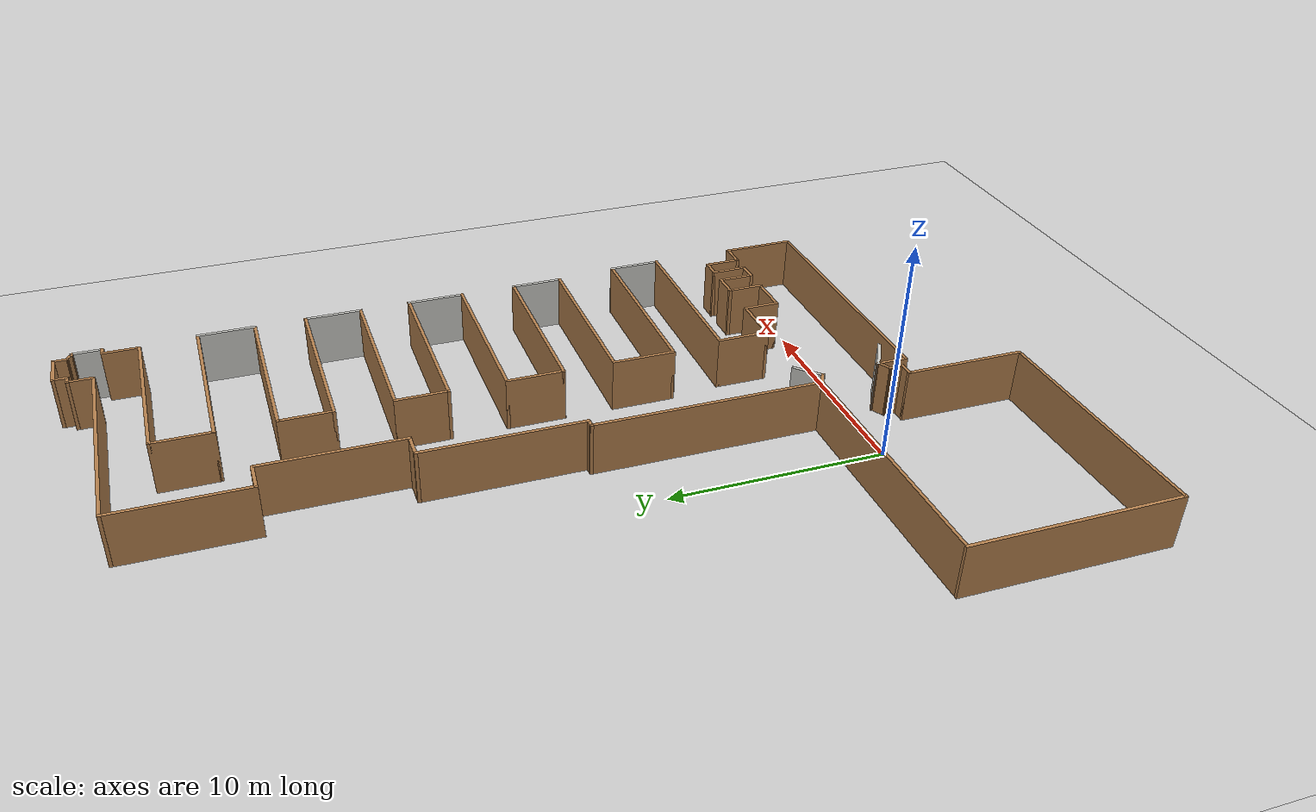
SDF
<sdf version="1.6">
 <world name="default">
  <light name="sun" type="directional">
   <pose>0 0 10 0 -0 0</pose>
   <diffuse>0.8 0.8 0.8 1</diffuse>
   <specular>0.2 0.2 0.2 1</specular>
   <attenuation>
    <range>1000</range>
    <constant>0.9</constant>
    <linear>0.01</linear>
    <quadratic>0.001</quadratic>
   </attenuation>
   <direction>-0.5 0.1 -0.9</direction>
  </light>
  <model name="ground_plane">
   <static>1</static>
   <link name="link">
    <collision name="collision">
     <geometry><plane><normal>0 0 1</normal><size>100 100</size></plane></geometry>
     <surface>
      <contact><collide_bitmask>65535</collide_bitmask></contact>
      <friction><ode><mu>100</mu><mu2>50</mu2></ode></friction>
     </surface>
    </collision>
    <visual name="visual">
     <cast_shadows>0</cast_shadows>
     <geometry><plane><normal>0 0 1</normal><size>100 100</size></plane></geometry>
     <material>
      <script><uri>file://media/materials/scripts/gazebo.material</uri><name>Gazebo/Grey</name></script>
     </material>
    </visual>
   </link>
  </model>
  <gravity>0 0 -9.8</gravity>
  <magnetic_field>6e-06 2.3e-05 -4.2e-05</magnetic_field>
  <atmosphere type="adiabatic"/>
  <physics name="default_physics" default="0" type="ode">
   <max_step_size>0.001</max_step_size>
   <real_time_factor>1</real_time_factor>
   <real_time_update_rate>1000</real_time_update_rate>
  </physics>
  <scene><ambient>0.4 0.4 0.4 1</ambient><background>0.7 0.7 0.7 1</background><shadows>1</shadows></scene>
  <audio><device>default</device></audio>
  <spherical_coordinates>
   <surface_model>EARTH_WGS84</surface_model>
   <latitude_deg>0</latitude_deg>
   <longitude_deg>0</longitude_deg>
   <elevation>0</elevation>
   <heading_deg>0</heading_deg>
  </spherical_coordinates>
  <model name="ecst_v2">
   <pose>3.24118 12.9777 0 0 0 -1.5708</pose>
   <link name="Wall_100">
    <collision name="Wall_100_Collision">
     <geometry><box><size>1 0.15 2.5</size></box></geometry>
     <pose>0 0 1.25 0 -0 0</pose>
    </collision>
    <visual name="Wall_100_Visual">
     <pose>0 0 1.25 0 -0 0</pose>
     <geometry><box><size>1 0.15 2.5</size></box></geometry>
     <material>
      <script><uri>file://media/materials/scripts/gazebo.material</uri><name>Gazebo/Wood</name></script>
      <ambient>1 1 1 1</ambient>
     </material>
     <meta><layer>0</layer></meta>
    </visual>
    <pose>10.625 10.6345 0 0 -0 1.5708</pose>
   </link>
   <link name="Wall_101">
    <collision name="Wall_101_Collision">
     <geometry><box><size>1.75 0.15 2.5</size></box></geometry>
     <pose>0 0 1.25 0 -0 0</pose>
    </collision>
    <visual name="Wall_101_Visual">
     <pose>0 0 1.25 0 -0 0</pose>
     <geometry><box><size>1.75 0.15 2.5</size></box></geometry>
     <material>
      <script><uri>file://media/materials/scripts/gazebo.material</uri><name>Gazebo/Wood</name></script>
      <ambient>1 1 1 1</ambient>
     </material>
     <meta><layer>0</layer></meta>
    </visual>
    <pose>11.425 11.0595 0 0 -0 0</pose>
   </link>
   <link name="Wall_102">
    <collision name="Wall_102_Collision">
     <geometry><box><size>1.25 0.15 2.5</size></box></geometry>
     <pose>0 0 1.25 0 -0 0</pose>
    </collision>
    <visual name="Wall_102_Visual">
     <pose>0 0 1.25 0 -0 0</pose>
     <geometry><box><size>1.25 0.15 2.5</size></box></geometry>
     <material>
      <script><uri>file://media/materials/scripts/gazebo.material</uri><name>Gazebo/Wood</name></script>
      <ambient>1 1 1 1</ambient>
     </material>
     <meta><layer>0</layer></meta>
    </visual>
    <pose>12.225 11.6095 0 0 -0 1.5708</pose>
   </link>
   <link name="Wall_103">
    <collision name="Wall_103_Collision">
     <geometry><box><size>3.5 0.15 2.5</size></box></geometry>
     <pose>0 0 1.25 0 -0 0</pose>
    </collision>
    <visual name="Wall_103_Visual">
     <pose>0 0 1.25 0 -0 0</pose>
     <geometry><box><size>3.5 0.15 2.5</size></box></geometry>
     <material>
      <script><uri>file://media/materials/scripts/gazebo.material</uri><name>Gazebo/Wood</name></script>
      <ambient>1 1 1 1</ambient>
     </material>
     <meta><layer>0</layer></meta>
    </visual>
    <pose>13.9 12.1595 0 0 -0 0</pose>
   </link>
   <link name="Wall_104">
    <collision name="Wall_104_Collision">
     <geometry><box><size>12.25 0.15 2.5</size></box></geometry>
     <pose>0 0 1.25 0 -0 0</pose>
    </collision>
    <visual name="Wall_104_Visual">
     <pose>0 0 1.25 0 -0 0</pose>
     <geometry><box><size>12.25 0.15 2.5</size></box></geometry>
     <material>
      <script><uri>file://media/materials/scripts/gazebo.material</uri><name>Gazebo/Wood</name></script>
      <ambient>1 1 1 1</ambient>
     </material>
     <meta><layer>0</layer></meta>
    </visual>
    <pose>15.575 6.10955 0 0 -0 -1.5708</pose>
   </link>
   <link name="Wall_105">
    <collision name="Wall_105_Collision">
     <geometry><box><size>1.5 0.15 2.5</size></box></geometry>
     <pose>0 0 1.25 0 -0 0</pose>
    </collision>
    <visual name="Wall_105_Visual">
     <pose>0 0 1.25 0 -0 0</pose>
     <geometry><box><size>1.5 0.15 2.5</size></box></geometry>
     <material>
      <script><uri>file://media/materials/scripts/gazebo.material</uri><name>Gazebo/Wood</name></script>
      <ambient>1 1 1 1</ambient>
     </material>
     <meta><layer>0</layer></meta>
    </visual>
    <pose>14.9 0.059548 0 0 -0 3.14159</pose>
   </link>
   <link name="Wall_106">
    <collision name="Wall_106_Collision">
     <geometry><box><size>1.75 0.15 2.5</size></box></geometry>
     <pose>0 0 1.25 0 -0 0</pose>
    </collision>
    <visual name="Wall_106_Visual">
     <pose>0 0 1.25 0 -0 0</pose>
     <geometry><box><size>1.75 0.15 2.5</size></box></geometry>
     <material>
      <script><uri>file://media/materials/scripts/gazebo.material</uri><name>Gazebo/CeilingTiled</name></script>
      <ambient>1 1 1 1</ambient>
     </material>
     <meta><layer>0</layer></meta>
    </visual>
    <pose>14.625 0.752368 0 0 -0 1.0472</pose>
   </link>
   <link name="Wall_108">
    <collision name="Wall_108_Collision">
     <geometry><box><size>0.75 0.15 2.5</size></box></geometry>
     <pose>0 0 1.25 0 -0 0</pose>
    </collision>
    <visual name="Wall_108_Visual">
     <pose>0 0 1.25 0 -0 0</pose>
     <geometry><box><size>0.75 0.15 2.5</size></box></geometry>
     <material>
      <script><uri>file://media/materials/scripts/gazebo.material</uri><name>Gazebo/Wood</name></script>
      <ambient>1 1 1 1</ambient>
     </material>
     <meta><layer>0</layer></meta>
    </visual>
    <pose>14.375 -0.200259 0 0 -0 -1.0472</pose>
   </link>
   <link name="Wall_109">
    <collision name="Wall_109_Collision">
     <geometry><box><size>0.75 0.15 2.5</size></box></geometry>
     <pose>0 0 1.25 0 -0 0</pose>
    </collision>
    <visual name="Wall_109_Visual">
     <pose>0 0 1.25 0 -0 0</pose>
     <geometry><box><size>0.75 0.15 2.5</size></box></geometry>
     <material>
      <script><uri>file://media/materials/scripts/gazebo.material</uri><name>Gazebo/Wood</name></script>
      <ambient>1 1 1 1</ambient>
     </material>
     <meta><layer>0</layer></meta>
    </visual>
    <pose>14.825 -0.460067 0 0 -0 0</pose>
   </link>
   <link name="Wall_110">
    <collision name="Wall_110_Collision">
     <geometry><box><size>0.75 0.15 2.5</size></box></geometry>
     <pose>0 0 1.25 0 -0 0</pose>
    </collision>
    <visual name="Wall_110_Visual">
     <pose>0 0 1.25 0 -0 0</pose>
     <geometry><box><size>0.75 0.15 2.5</size></box></geometry>
     <material>
      <script><uri>file://media/materials/scripts/gazebo.material</uri><name>Gazebo/Wood</name></script>
      <ambient>1 1 1 1</ambient>
     </material>
     <meta><layer>0</layer></meta>
    </visual>
    <pose>15.125 -0.760067 0 0 -0 -1.5708</pose>
   </link>
   <link name="Wall_111">
    <collision name="Wall_111_Collision">
     <geometry><box><size>5.75 0.15 2.5</size></box></geometry>
     <pose>0 0 1.25 0 -0 0</pose>
    </collision>
    <visual name="Wall_111_Visual">
     <pose>0 0 1.25 0 -0 0</pose>
     <geometry><box><size>5.75 0.15 2.5</size></box></geometry>
     <material>
      <script><uri>file://media/materials/scripts/gazebo.material</uri><name>Gazebo/Wood</name></script>
      <ambient>1 1 1 1</ambient>
     </material>
     <meta><layer>0</layer></meta>
    </visual>
    <pose>17.925 -1.06007 0 0 -0 0</pose>
   </link>
   <link name="Wall_112">
    <collision name="Wall_112_Collision">
     <geometry><box><size>11.25 0.15 2.5</size></box></geometry>
     <pose>0 0 1.25 0 -0 0</pose>
    </collision>
    <visual name="Wall_112_Visual">
     <pose>0 0 1.25 0 -0 0</pose>
     <geometry><box><size>11.25 0.15 2.5</size></box></geometry>
     <material>
      <script><uri>file://media/materials/scripts/gazebo.material</uri><name>Gazebo/Wood</name></script>
      <ambient>1 1 1 1</ambient>
     </material>
     <meta><layer>0</layer></meta>
    </visual>
    <pose>20.725 -6.61007 0 0 -0 -1.5708</pose>
   </link>
   <link name="Wall_113">
    <collision name="Wall_113_Collision">
     <geometry><box><size>9.75 0.15 2.5</size></box></geometry>
     <pose>0 0 1.25 0 -0 0</pose>
    </collision>
    <visual name="Wall_113_Visual">
     <pose>0 0 1.25 0 -0 0</pose>
     <geometry><box><size>9.75 0.15 2.5</size></box></geometry>
     <material>
      <script><uri>file://media/materials/scripts/gazebo.material</uri><name>Gazebo/Wood</name></script>
      <ambient>1 1 1 1</ambient>
     </material>
     <meta><layer>0</layer></meta>
    </visual>
    <pose>15.925 -12.1601 0 0 -0 3.14159</pose>
   </link>
   <link name="Wall_114">
    <collision name="Wall_114_Collision">
     <geometry><box><size>11.75 0.15 2.5</size></box></geometry>
     <pose>0 0 1.25 0 -0 0</pose>
    </collision>
    <visual name="Wall_114_Visual">
     <pose>0 0 1.25 0 -0 0</pose>
     <geometry><box><size>11.75 0.15 2.5</size></box></geometry>
     <material>
      <script><uri>file://media/materials/scripts/gazebo.material</uri><name>Gazebo/Wood</name></script>
      <ambient>1 1 1 1</ambient>
     </material>
     <meta><layer>0</layer></meta>
    </visual>
    <pose>11.125 -6.36007 0 0 -0 1.5708</pose>
   </link>
   <link name="Wall_115">
    <collision name="Wall_115_Collision">
     <geometry><box><size>10.75 0.15 2.5</size></box></geometry>
     <pose>0 0 1.25 0 -0 0</pose>
    </collision>
    <visual name="Wall_115_Visual">
     <pose>0 0 1.25 0 -0 0</pose>
     <geometry><box><size>10.75 0.15 2.5</size></box></geometry>
     <material>
      <script><uri>file://media/materials/scripts/gazebo.material</uri><name>Gazebo/Wood</name></script>
      <ambient>1 1 1 1</ambient>
     </material>
     <meta><layer>0</layer></meta>
    </visual>
    <pose>5.825 -0.560067 0 0 -0 3.14159</pose>
   </link>
   <link name="Wall_116">
    <collision name="Wall_116_Collision">
     <geometry><box><size>0.5 0.15 2.5</size></box></geometry>
     <pose>0 0 1.25 0 -0 0</pose>
    </collision>
    <visual name="Wall_116_Visual">
     <pose>0 0 1.25 0 -0 0</pose>
     <geometry><box><size>0.5 0.15 2.5</size></box></geometry>
     <material>
      <script><uri>file://media/materials/scripts/gazebo.material</uri><name>Gazebo/Wood</name></script>
      <ambient>1 1 1 1</ambient>
     </material>
     <meta><layer>0</layer></meta>
    </visual>
    <pose>0.525 -0.385067 0 0 -0 1.5708</pose>
   </link>
   <link name="Wall_117">
    <collision name="Wall_117_Collision">
     <geometry><box><size>7.5 0.15 2.5</size></box></geometry>
     <pose>0 0 1.25 0 -0 0</pose>
    </collision>
    <visual name="Wall_117_Visual">
     <pose>0 0 1.25 0 -0 0</pose>
     <geometry><box><size>7.5 0.15 2.5</size></box></geometry>
     <material>
      <script><uri>file://media/materials/scripts/gazebo.material</uri><name>Gazebo/Wood</name></script>
      <ambient>1 1 1 1</ambient>
     </material>
     <meta><layer>0</layer></meta>
    </visual>
    <pose>-3.15 -0.210067 0 0 -0 3.14159</pose>
   </link>
   <link name="Wall_118">
    <collision name="Wall_118_Collision">
     <geometry><box><size>1.25 0.15 2.5</size></box></geometry>
     <pose>0 0 1.25 0 -0 0</pose>
    </collision>
    <visual name="Wall_118_Visual">
     <pose>0 0 1.25 0 -0 0</pose>
     <geometry><box><size>1.25 0.15 2.5</size></box></geometry>
     <material>
      <script><uri>file://media/materials/scripts/gazebo.material</uri><name>Gazebo/Wood</name></script>
      <ambient>1 1 1 1</ambient>
     </material>
     <meta><layer>0</layer></meta>
    </visual>
    <pose>-6.825 0.339933 0 0 -0 1.5708</pose>
   </link>
   <link name="Wall_119">
    <collision name="Wall_119_Collision">
     <geometry><box><size>6.5 0.15 2.5</size></box></geometry>
     <pose>0 0 1.25 0 -0 0</pose>
    </collision>
    <visual name="Wall_119_Visual">
     <pose>0 0 1.25 0 -0 0</pose>
     <geometry><box><size>6.5 0.15 2.5</size></box></geometry>
     <material>
      <script><uri>file://media/materials/scripts/gazebo.material</uri><name>Gazebo/Wood</name></script>
      <ambient>1 1 1 1</ambient>
     </material>
     <meta><layer>0</layer></meta>
    </visual>
    <pose>-10 0.889933 0 0 -0 3.14159</pose>
   </link>
   <link name="Wall_120">
    <collision name="Wall_120_Collision">
     <geometry><box><size>1.5 0.15 2.5</size></box></geometry>
     <pose>0 0 1.25 0 -0 0</pose>
    </collision>
    <visual name="Wall_120_Visual">
     <pose>0 0 1.25 0 -0 0</pose>
     <geometry><box><size>1.5 0.15 2.5</size></box></geometry>
     <material>
      <script><uri>file://media/materials/scripts/gazebo.material</uri><name>Gazebo/Wood</name></script>
      <ambient>1 1 1 1</ambient>
     </material>
     <meta><layer>0</layer></meta>
    </visual>
    <pose>-13.175 0.214933 0 0 -0 -1.5708</pose>
   </link>
   <link name="Wall_121">
    <collision name="Wall_121_Collision">
     <geometry><box><size>6 0.15 2.5</size></box></geometry>
     <pose>0 0 1.25 0 -0 0</pose>
    </collision>
    <visual name="Wall_121_Visual">
     <pose>0 0 1.25 0 -0 0</pose>
     <geometry><box><size>6 0.15 2.5</size></box></geometry>
     <material>
      <script><uri>file://media/materials/scripts/gazebo.material</uri><name>Gazebo/Wood</name></script>
      <ambient>1 1 1 1</ambient>
     </material>
     <meta><layer>0</layer></meta>
    </visual>
    <pose>-16.1 -0.460067 0 0 -0 3.14159</pose>
   </link>
   <link name="Wall_122">
    <collision name="Wall_122_Collision">
     <geometry><box><size>10.25 0.15 2.5</size></box></geometry>
     <pose>0 0 1.25 0 -0 0</pose>
    </collision>
    <visual name="Wall_122_Visual">
     <pose>0 0 1.25 0 -0 0</pose>
     <geometry><box><size>10.25 0.15 2.5</size></box></geometry>
     <material>
      <script><uri>file://media/materials/scripts/gazebo.material</uri><name>Gazebo/Wood</name></script>
      <ambient>1 1 1 1</ambient>
     </material>
     <meta><layer>0</layer></meta>
    </visual>
    <pose>-19.025 4.58993 0 0 -0 1.5708</pose>
   </link>
   <link name="Wall_123">
    <collision name="Wall_123_Collision">
     <geometry><box><size>1.25 0.15 2.5</size></box></geometry>
     <pose>0 0 1.25 0 -0 0</pose>
    </collision>
    <visual name="Wall_123_Visual">
     <pose>0 0 1.25 0 -0 0</pose>
     <geometry><box><size>1.25 0.15 2.5</size></box></geometry>
     <material>
      <script><uri>file://media/materials/scripts/gazebo.material</uri><name>Gazebo/Wood</name></script>
      <ambient>1 1 1 1</ambient>
     </material>
     <meta><layer>0</layer></meta>
    </visual>
    <pose>-19.575 9.63993 0 0 -0 3.14159</pose>
   </link>
   <link name="Wall_124">
    <collision name="Wall_124_Collision">
     <geometry><box><size>0.5 0.15 2.5</size></box></geometry>
     <pose>0 0 1.25 0 -0 0</pose>
    </collision>
    <visual name="Wall_124_Visual">
     <pose>0 0 1.25 0 -0 0</pose>
     <geometry><box><size>0.5 0.15 2.5</size></box></geometry>
     <material>
      <script><uri>file://media/materials/scripts/gazebo.material</uri><name>Gazebo/Wood</name></script>
      <ambient>1 1 1 1</ambient>
     </material>
     <meta><layer>0</layer></meta>
    </visual>
    <pose>-20.125 9.81493 0 0 -0 1.5708</pose>
   </link>
   <link name="Wall_125">
    <collision name="Wall_125_Collision">
     <geometry><box><size>0.75 0.15 2.5</size></box></geometry>
     <pose>0 0 1.25 0 -0 0</pose>
    </collision>
    <visual name="Wall_125_Visual">
     <pose>0 0 1.25 0 -0 0</pose>
     <geometry><box><size>0.75 0.15 2.5</size></box></geometry>
     <material>
      <script><uri>file://media/materials/scripts/gazebo.material</uri><name>Gazebo/Wood</name></script>
      <ambient>1 1 1 1</ambient>
     </material>
     <meta><layer>0</layer></meta>
    </visual>
    <pose>-20.425 9.98993 0 0 -0 3.14159</pose>
   </link>
   <link name="Wall_126">
    <collision name="Wall_126_Collision">
     <geometry><box><size>1.75 0.15 2.5</size></box></geometry>
     <pose>0 0 1.25 0 -0 0</pose>
    </collision>
    <visual name="Wall_126_Visual">
     <pose>0 0 1.25 0 -0 0</pose>
     <geometry><box><size>1.75 0.15 2.5</size></box></geometry>
     <material>
      <script><uri>file://media/materials/scripts/gazebo.material</uri><name>Gazebo/Wood</name></script>
      <ambient>1 1 1 1</ambient>
     </material>
     <meta><layer>0</layer></meta>
    </visual>
    <pose>-20.725 10.7899 0 0 -0 1.5708</pose>
   </link>
   <link name="Wall_127">
    <collision name="Wall_127_Collision">
     <geometry><box><size>0.75 0.15 2.5</size></box></geometry>
     <pose>0 0 1.25 0 -0 0</pose>
    </collision>
    <visual name="Wall_127_Visual">
     <pose>0 0 1.25 0 -0 0</pose>
     <geometry><box><size>0.75 0.15 2.5</size></box></geometry>
     <material>
      <script><uri>file://media/materials/scripts/gazebo.material</uri><name>Gazebo/Wood</name></script>
      <ambient>1 1 1 1</ambient>
     </material>
     <meta><layer>0</layer></meta>
    </visual>
    <pose>-20.425 11.5899 0 0 -0 0</pose>
   </link>
   <link name="Wall_128">
    <collision name="Wall_128_Collision">
     <geometry><box><size>0.5 0.15 2.5</size></box></geometry>
     <pose>0 0 1.25 0 -0 0</pose>
    </collision>
    <visual name="Wall_128_Visual">
     <pose>0 0 1.25 0 -0 0</pose>
     <geometry><box><size>0.5 0.15 2.5</size></box></geometry>
     <material>
      <script><uri>file://media/materials/scripts/gazebo.material</uri><name>Gazebo/Wood</name></script>
      <ambient>1 1 1 1</ambient>
     </material>
     <meta><layer>0</layer></meta>
    </visual>
    <pose>-20.0375 11.7415 0 0 -0 1.0472</pose>
   </link>
   <link name="Wall_129">
    <collision name="Wall_129_Collision">
     <geometry><box><size>0.25 0.15 2.5</size></box></geometry>
     <pose>0 0 1.25 0 -0 0</pose>
    </collision>
    <visual name="Wall_129_Visual">
     <pose>0 0 1.25 0 -0 0</pose>
     <geometry><box><size>0.25 0.15 2.5</size></box></geometry>
     <material>
      <script><uri>file://media/materials/scripts/gazebo.material</uri><name>Gazebo/Wood</name></script>
      <ambient>1 1 1 1</ambient>
     </material>
     <meta><layer>0</layer></meta>
    </visual>
    <pose>-19.95 11.943 0 0 -0 1.5708</pose>
   </link>
   <link name="Wall_130">
    <collision name="Wall_130_Collision">
     <geometry><box><size>1.5 0.15 2.5</size></box></geometry>
     <pose>0 0 1.25 0 -0 0</pose>
    </collision>
    <visual name="Wall_130_Visual">
     <pose>0 0 1.25 0 -0 0</pose>
     <geometry><box><size>1.5 0.15 2.5</size></box></geometry>
     <material>
      <script><uri>file://media/materials/scripts/gazebo.material</uri><name>Gazebo/CeilingTiled</name></script>
      <ambient>1 1 1 1</ambient>
     </material>
     <meta><layer>0</layer></meta>
    </visual>
    <pose>-19.275 11.993 0 0 -0 0</pose>
   </link>
   <link name="Wall_131">
    <collision name="Wall_131_Collision">
     <geometry><box><size>0.5 0.15 2.5</size></box></geometry>
     <pose>0 0 1.25 0 -0 0</pose>
    </collision>
    <visual name="Wall_131_Visual">
     <pose>0 0 1.25 0 -0 0</pose>
     <geometry><box><size>0.5 0.15 2.5</size></box></geometry>
     <material>
      <script><uri>file://media/materials/scripts/gazebo.material</uri><name>Gazebo/Wood</name></script>
      <ambient>1 1 1 1</ambient>
     </material>
     <meta><layer>0</layer></meta>
    </visual>
    <pose>-18.6 11.818 0 0 -0 -1.5708</pose>
   </link>
   <link name="Wall_132">
    <collision name="Wall_132_Collision">
     <geometry><box><size>1.75 0.15 2.5</size></box></geometry>
     <pose>0 0 1.25 0 -0 0</pose>
    </collision>
    <visual name="Wall_132_Visual">
     <pose>0 0 1.25 0 -0 0</pose>
     <geometry><box><size>1.75 0.15 2.5</size></box></geometry>
     <material>
      <script><uri>file://media/materials/scripts/gazebo.material</uri><name>Gazebo/Wood</name></script>
      <ambient>1 1 1 1</ambient>
     </material>
     <meta><layer>0</layer></meta>
    </visual>
    <pose>-17.8 11.643 0 0 -0 0</pose>
   </link>
   <link name="Wall_133">
    <collision name="Wall_133_Collision">
     <geometry><box><size>8 0.15 2.5</size></box></geometry>
     <pose>0 0 1.25 0 -0 0</pose>
    </collision>
    <visual name="Wall_133_Visual">
     <pose>0 0 1.25 0 -0 0</pose>
     <geometry><box><size>8 0.15 2.5</size></box></geometry>
     <material>
      <script><uri>file://media/materials/scripts/gazebo.material</uri><name>Gazebo/Wood</name></script>
      <ambient>1 1 1 1</ambient>
     </material>
     <meta><layer>0</layer></meta>
    </visual>
    <pose>-17 7.71804 0 0 -0 -1.5708</pose>
   </link>
   <link name="Wall_134">
    <collision name="Wall_134_Collision">
     <geometry><box><size>2.75 0.15 2.5</size></box></geometry>
     <pose>0 0 1.25 0 -0 0</pose>
    </collision>
    <visual name="Wall_134_Visual">
     <pose>0 0 1.25 0 -0 0</pose>
     <geometry><box><size>2.75 0.15 2.5</size></box></geometry>
     <material>
      <script><uri>file://media/materials/scripts/gazebo.material</uri><name>Gazebo/Wood</name></script>
      <ambient>1 1 1 1</ambient>
     </material>
     <meta><layer>0</layer></meta>
    </visual>
    <pose>-15.7 3.79304 0 0 -0 0</pose>
   </link>
   <link name="Wall_135">
    <collision name="Wall_135_Collision">
     <geometry><box><size>8.25 0.15 2.5</size></box></geometry>
     <pose>0 0 1.25 0 -0 0</pose>
    </collision>
    <visual name="Wall_135_Visual">
     <pose>0 0 1.25 0 -0 0</pose>
     <geometry><box><size>8.25 0.15 2.5</size></box></geometry>
     <material>
      <script><uri>file://media/materials/scripts/gazebo.material</uri><name>Gazebo/Wood</name></script>
      <ambient>1 1 1 1</ambient>
     </material>
     <meta><layer>0</layer></meta>
    </visual>
    <pose>-14.4 7.84304 0 0 -0 1.5708</pose>
   </link>
   <link name="Wall_136">
    <collision name="Wall_136_Collision">
     <geometry><box><size>2.75 0.15 2.5</size></box></geometry>
     <pose>0 0 1.25 0 -0 0</pose>
    </collision>
    <visual name="Wall_136_Visual">
     <pose>0 0 1.25 0 -0 0</pose>
     <geometry><box><size>2.75 0.15 2.5</size></box></geometry>
     <material>
      <script><uri>file://media/materials/scripts/gazebo.material</uri><name>Gazebo/CeilingTiled</name></script>
      <ambient>1 1 1 1</ambient>
     </material>
     <meta><layer>0</layer></meta>
    </visual>
    <pose>-13.1 11.893 0 0 -0 0</pose>
   </link>
   <link name="Wall_137">
    <collision name="Wall_137_Collision">
     <geometry><box><size>8.25 0.15 2.5</size></box></geometry>
     <pose>0 0 1.25 0 -0 0</pose>
    </collision>
    <visual name="Wall_137_Visual">
     <pose>0 0 1.25 0 -0 0</pose>
     <geometry><box><size>8.25 0.15 2.5</size></box></geometry>
     <material>
      <script><uri>file://media/materials/scripts/gazebo.material</uri><name>Gazebo/Wood</name></script>
      <ambient>1 1 1 1</ambient>
     </material>
     <meta><layer>0</layer></meta>
    </visual>
    <pose>-11.8 7.84304 0 0 -0 -1.5708</pose>
   </link>
   <link name="Wall_138">
    <collision name="Wall_138_Collision">
     <geometry><box><size>2.5 0.15 2.5</size></box></geometry>
     <pose>0 0 1.25 0 -0 0</pose>
    </collision>
    <visual name="Wall_138_Visual">
     <pose>0 0 1.25 0 -0 0</pose>
     <geometry><box><size>2.5 0.15 2.5</size></box></geometry>
     <material>
      <script><uri>file://media/materials/scripts/gazebo.material</uri><name>Gazebo/Wood</name></script>
      <ambient>1 1 1 1</ambient>
     </material>
     <meta><layer>0</layer></meta>
    </visual>
    <pose>-10.625 3.79304 0 0 -0 0</pose>
   </link>
   <link name="Wall_139">
    <collision name="Wall_139_Collision">
     <geometry><box><size>8.25 0.15 2.5</size></box></geometry>
     <pose>0 0 1.25 0 -0 0</pose>
    </collision>
    <visual name="Wall_139_Visual">
     <pose>0 0 1.25 0 -0 0</pose>
     <geometry><box><size>8.25 0.15 2.5</size></box></geometry>
     <material>
      <script><uri>file://media/materials/scripts/gazebo.material</uri><name>Gazebo/Wood</name></script>
      <ambient>1 1 1 1</ambient>
     </material>
     <meta><layer>0</layer></meta>
    </visual>
    <pose>-9.45 7.84304 0 0 -0 1.5708</pose>
   </link>
   <link name="Wall_140">
    <collision name="Wall_140_Collision">
     <geometry><box><size>2.75 0.15 2.5</size></box></geometry>
     <pose>0 0 1.25 0 -0 0</pose>
    </collision>
    <visual name="Wall_140_Visual">
     <pose>0 0 1.25 0 -0 0</pose>
     <geometry><box><size>2.75 0.15 2.5</size></box></geometry>
     <material>
      <script><uri>file://media/materials/scripts/gazebo.material</uri><name>Gazebo/CeilingTiled</name></script>
      <ambient>1 1 1 1</ambient>
     </material>
     <meta><layer>0</layer></meta>
    </visual>
    <pose>-8.15 11.893 0 0 -0 0</pose>
   </link>
   <link name="Wall_141">
    <collision name="Wall_141_Collision">
     <geometry><box><size>8.25 0.15 2.5</size></box></geometry>
     <pose>0 0 1.25 0 -0 0</pose>
    </collision>
    <visual name="Wall_141_Visual">
     <pose>0 0 1.25 0 -0 0</pose>
     <geometry><box><size>8.25 0.15 2.5</size></box></geometry>
     <material>
      <script><uri>file://media/materials/scripts/gazebo.material</uri><name>Gazebo/Wood</name></script>
      <ambient>1 1 1 1</ambient>
     </material>
     <meta><layer>0</layer></meta>
    </visual>
    <pose>-6.85 7.84304 0 0 -0 -1.5708</pose>
   </link>
   <link name="Wall_142">
    <collision name="Wall_142_Collision">
     <geometry><box><size>2.5 0.15 2.5</size></box></geometry>
     <pose>0 0 1.25 0 -0 0</pose>
    </collision>
    <visual name="Wall_142_Visual">
     <pose>0 0 1.25 0 -0 0</pose>
     <geometry><box><size>2.5 0.15 2.5</size></box></geometry>
     <material>
      <script><uri>file://media/materials/scripts/gazebo.material</uri><name>Gazebo/Wood</name></script>
      <ambient>1 1 1 1</ambient>
     </material>
     <meta><layer>0</layer></meta>
    </visual>
    <pose>-5.675 3.79304 0 0 -0 0</pose>
   </link>
   <link name="Wall_143">
    <collision name="Wall_143_Collision">
     <geometry><box><size>8.25 0.15 2.5</size></box></geometry>
     <pose>0 0 1.25 0 -0 0</pose>
    </collision>
    <visual name="Wall_143_Visual">
     <pose>0 0 1.25 0 -0 0</pose>
     <geometry><box><size>8.25 0.15 2.5</size></box></geometry>
     <material>
      <script><uri>file://media/materials/scripts/gazebo.material</uri><name>Gazebo/Wood</name></script>
      <ambient>1 1 1 1</ambient>
     </material>
     <meta><layer>0</layer></meta>
    </visual>
    <pose>-4.5 7.84304 0 0 -0 1.5708</pose>
   </link>
   <link name="Wall_144">
    <collision name="Wall_144_Collision">
     <geometry><box><size>2.75 0.15 2.5</size></box></geometry>
     <pose>0 0 1.25 0 -0 0</pose>
    </collision>
    <visual name="Wall_144_Visual">
     <pose>0 0 1.25 0 -0 0</pose>
     <geometry><box><size>2.75 0.15 2.5</size></box></geometry>
     <material>
      <script><uri>file://media/materials/scripts/gazebo.material</uri><name>Gazebo/CeilingTiled</name></script>
      <ambient>1 1 1 1</ambient>
     </material>
     <meta><layer>0</layer></meta>
    </visual>
    <pose>-3.2 11.893 0 0 -0 0</pose>
   </link>
   <link name="Wall_145">
    <collision name="Wall_145_Collision">
     <geometry><box><size>8.25 0.15 2.5</size></box></geometry>
     <pose>0 0 1.25 0 -0 0</pose>
    </collision>
    <visual name="Wall_145_Visual">
     <pose>0 0 1.25 0 -0 0</pose>
     <geometry><box><size>8.25 0.15 2.5</size></box></geometry>
     <material>
      <script><uri>file://media/materials/scripts/gazebo.material</uri><name>Gazebo/Wood</name></script>
      <ambient>1 1 1 1</ambient>
     </material>
     <meta><layer>0</layer></meta>
    </visual>
    <pose>-1.9 7.84304 0 0 -0 -1.5708</pose>
   </link>
   <link name="Wall_146">
    <collision name="Wall_146_Collision">
     <geometry><box><size>2.75 0.15 2.5</size></box></geometry>
     <pose>0 0 1.25 0 -0 0</pose>
    </collision>
    <visual name="Wall_146_Visual">
     <pose>0 0 1.25 0 -0 0</pose>
     <geometry><box><size>2.75 0.15 2.5</size></box></geometry>
     <material>
      <script><uri>file://media/materials/scripts/gazebo.material</uri><name>Gazebo/Wood</name></script>
      <ambient>1 1 1 1</ambient>
     </material>
     <meta><layer>0</layer></meta>
    </visual>
    <pose>-0.6 3.79304 0 0 -0 0</pose>
   </link>
   <link name="Wall_147">
    <collision name="Wall_147_Collision">
     <geometry><box><size>8.25 0.15 2.5</size></box></geometry>
     <pose>0 0 1.25 0 -0 0</pose>
    </collision>
    <visual name="Wall_147_Visual">
     <pose>0 0 1.25 0 -0 0</pose>
     <geometry><box><size>8.25 0.15 2.5</size></box></geometry>
     <material>
      <script><uri>file://media/materials/scripts/gazebo.material</uri><name>Gazebo/Wood</name></script>
      <ambient>1 1 1 1</ambient>
     </material>
     <meta><layer>0</layer></meta>
    </visual>
    <pose>0.7 7.84304 0 0 -0 1.5708</pose>
   </link>
   <link name="Wall_148">
    <collision name="Wall_148_Collision">
     <geometry><box><size>2.5 0.15 2.5</size></box></geometry>
     <pose>0 0 1.25 0 -0 0</pose>
    </collision>
    <visual name="Wall_148_Visual">
     <pose>0 0 1.25 0 -0 0</pose>
     <geometry><box><size>2.5 0.15 2.5</size></box></geometry>
     <material>
      <script><uri>file://media/materials/scripts/gazebo.material</uri><name>Gazebo/CeilingTiled</name></script>
      <ambient>1 1 1 1</ambient>
     </material>
     <meta><layer>0</layer></meta>
    </visual>
    <pose>1.875 11.893 0 0 -0 0</pose>
   </link>
   <link name="Wall_149">
    <collision name="Wall_149_Collision">
     <geometry><box><size>8.25 0.15 2.5</size></box></geometry>
     <pose>0 0 1.25 0 -0 0</pose>
    </collision>
    <visual name="Wall_149_Visual">
     <pose>0 0 1.25 0 -0 0</pose>
     <geometry><box><size>8.25 0.15 2.5</size></box></geometry>
     <material>
      <script><uri>file://media/materials/scripts/gazebo.material</uri><name>Gazebo/Wood</name></script>
      <ambient>1 1 1 1</ambient>
     </material>
     <meta><layer>0</layer></meta>
    </visual>
    <pose>3.05 7.84304 0 0 -0 -1.5708</pose>
   </link>
   <link name="Wall_150">
    <collision name="Wall_150_Collision">
     <geometry><box><size>3 0.15 2.5</size></box></geometry>
     <pose>0 0 1.25 0 -0 0</pose>
    </collision>
    <visual name="Wall_150_Visual">
     <pose>0 0 1.25 0 -0 0</pose>
     <geometry><box><size>3 0.15 2.5</size></box></geometry>
     <material>
      <script><uri>file://media/materials/scripts/gazebo.material</uri><name>Gazebo/Wood</name></script>
      <ambient>1 1 1 1</ambient>
     </material>
     <meta><layer>0</layer></meta>
    </visual>
    <pose>4.475 3.79304 0 0 -0 0</pose>
   </link>
   <link name="Wall_151">
    <collision name="Wall_151_Collision">
     <geometry><box><size>8.5 0.15 2.5</size></box></geometry>
     <pose>0 0 1.25 0 -0 0</pose>
    </collision>
    <visual name="Wall_151_Visual">
     <pose>0 0 1.25 0 -0 0</pose>
     <geometry><box><size>8.5 0.15 2.5</size></box></geometry>
     <material>
      <script><uri>file://media/materials/scripts/gazebo.material</uri><name>Gazebo/Wood</name></script>
      <ambient>1 1 1 1</ambient>
     </material>
     <meta><layer>0</layer></meta>
    </visual>
    <pose>5.9 7.96804 0 0 -0 1.5708</pose>
   </link>
   <link name="Wall_152">
    <collision name="Wall_152_Collision">
     <geometry><box><size>2.52506 0.15 2.5</size></box></geometry>
     <pose>0 0 1.25 0 -0 0</pose>
    </collision>
    <visual name="Wall_152_Visual">
     <pose>0 0 1.25 0 -0 0</pose>
     <geometry><box><size>2.52506 0.15 2.5</size></box></geometry>
     <material>
      <script><uri>file://media/materials/scripts/gazebo.material</uri><name>Gazebo/CeilingTiled</name></script>
      <ambient>1 1 1 1</ambient>
     </material>
     <meta><layer>0</layer></meta>
    </visual>
    <pose>7.0875 12.1513 0 0 -0 0.00695</pose>
   </link>
   <link name="Wall_153">
    <collision name="Wall_153_Collision">
     <geometry><box><size>8.25 0.15 2.5</size></box></geometry>
     <pose>0 0 1.25 0 -0 0</pose>
    </collision>
    <visual name="Wall_153_Visual">
     <pose>0 0 1.25 0 -0 0</pose>
     <geometry><box><size>8.25 0.15 2.5</size></box></geometry>
     <material>
      <script><uri>file://media/materials/scripts/gazebo.material</uri><name>Gazebo/Wood</name></script>
      <ambient>1 1 1 1</ambient>
     </material>
     <meta><layer>0</layer></meta>
    </visual>
    <pose>8.275 8.10955 0 0 -0 -1.5708</pose>
   </link>
   <link name="Wall_155">
    <collision name="Wall_155_Collision">
     <geometry><box><size>0.75 0.15 2.5</size></box></geometry>
     <pose>0 0 1.25 0 -0 0</pose>
    </collision>
    <visual name="Wall_155_Visual">
     <pose>0 0 1.25 0 -0 0</pose>
     <geometry><box><size>0.75 0.15 2.5</size></box></geometry>
     <material>
      <script><uri>file://media/materials/scripts/gazebo.material</uri><name>Gazebo/Wood</name></script>
      <ambient>1 1 1 1</ambient>
     </material>
     <meta><layer>0</layer></meta>
    </visual>
    <pose>11.275 -0.30026 0 0 -0 1.0472</pose>
   </link>
   <link name="Wall_156">
    <collision name="Wall_156_Collision">
     <geometry><box><size>1.5 0.15 2.5</size></box></geometry>
     <pose>0 0 1.25 0 -0 0</pose>
    </collision>
    <visual name="Wall_156_Visual">
     <pose>0 0 1.25 0 -0 0</pose>
     <geometry><box><size>1.5 0.15 2.5</size></box></geometry>
     <material>
      <script><uri>file://media/materials/scripts/gazebo.material</uri><name>Gazebo/CeilingTiled</name></script>
      <ambient>1 1 1 1</ambient>
     </material>
     <meta><layer>0</layer></meta>
    </visual>
    <pose>10.9477 0.436845 0 0 -0 2.35619</pose>
   </link>
   <link name="Wall_90">
    <collision name="Wall_90_Collision">
     <geometry><box><size>8.25 0.15 2.5</size></box></geometry>
     <pose>0 0 1.25 0 -0 0</pose>
    </collision>
    <visual name="Wall_90_Visual">
     <pose>0 0 1.25 0 -0 0</pose>
     <geometry><box><size>8.25 0.15 2.5</size></box></geometry>
     <material>
      <script><uri>file://media/materials/scripts/gazebo.material</uri><name>Gazebo/Grey</name></script>
      <ambient>1 1 1 1</ambient>
     </material>
     <meta><layer>0</layer></meta>
    </visual>
    <pose>8.275 8.10955 0 0 -0 -1.5708</pose>
   </link>
   <link name="Wall_91">
    <collision name="Wall_91_Collision">
     <geometry><box><size>2.5 0.15 2.5</size></box></geometry>
     <pose>0 0 1.25 0 -0 0</pose>
    </collision>
    <visual name="Wall_91_Visual">
     <pose>0 0 1.25 0 -0 0</pose>
     <geometry><box><size>2.5 0.15 2.5</size></box></geometry>
     <material>
      <script><uri>file://media/materials/scripts/gazebo.material</uri><name>Gazebo/Wood</name></script>
      <ambient>1 1 1 1</ambient>
     </material>
     <meta><layer>0</layer></meta>
    </visual>
    <pose>9.45 4.05955 0 0 -0 0</pose>
   </link>
   <link name="Wall_92">
    <collision name="Wall_92_Collision">
     <geometry><box><size>2.5 0.15 2.5</size></box></geometry>
     <pose>0 0 1.25 0 -0 0</pose>
    </collision>
    <visual name="Wall_92_Visual">
     <pose>0 0 1.25 0 -0 0</pose>
     <geometry><box><size>2.5 0.15 2.5</size></box></geometry>
     <material>
      <script><uri>file://media/materials/scripts/gazebo.material</uri><name>Gazebo/Wood</name></script>
      <ambient>1 1 1 1</ambient>
     </material>
     <meta><layer>0</layer></meta>
    </visual>
    <pose>10.625 5.23455 0 0 -0 1.5708</pose>
   </link>
   <link name="Wall_93">
    <collision name="Wall_93_Collision">
     <geometry><box><size>1.75 0.15 2.5</size></box></geometry>
     <pose>0 0 1.25 0 -0 0</pose>
    </collision>
    <visual name="Wall_93_Visual">
     <pose>0 0 1.25 0 -0 0</pose>
     <geometry><box><size>1.75 0.15 2.5</size></box></geometry>
     <material>
      <script><uri>file://media/materials/scripts/gazebo.material</uri><name>Gazebo/Wood</name></script>
      <ambient>1 1 1 1</ambient>
     </material>
     <meta><layer>0</layer></meta>
    </visual>
    <pose>11.425 6.40955 0 0 -0 0</pose>
   </link>
   <link name="Wall_94">
    <collision name="Wall_94_Collision">
     <geometry><box><size>2 0.15 2.5</size></box></geometry>
     <pose>0 0 1.25 0 -0 0</pose>
    </collision>
    <visual name="Wall_94_Visual">
     <pose>0 0 1.25 0 -0 0</pose>
     <geometry><box><size>2 0.15 2.5</size></box></geometry>
     <material>
      <script><uri>file://media/materials/scripts/gazebo.material</uri><name>Gazebo/Wood</name></script>
      <ambient>1 1 1 1</ambient>
     </material>
     <meta><layer>0</layer></meta>
    </visual>
    <pose>12.225 7.33455 0 0 -0 1.5708</pose>
   </link>
   <link name="Wall_95">
    <collision name="Wall_95_Collision">
     <geometry><box><size>1.75 0.15 2.5</size></box></geometry>
     <pose>0 0 1.25 0 -0 0</pose>
    </collision>
    <visual name="Wall_95_Visual">
     <pose>0 0 1.25 0 -0 0</pose>
     <geometry><box><size>1.75 0.15 2.5</size></box></geometry>
     <material>
      <script><uri>file://media/materials/scripts/gazebo.material</uri><name>Gazebo/Wood</name></script>
      <ambient>1 1 1 1</ambient>
     </material>
     <meta><layer>0</layer></meta>
    </visual>
    <pose>11.425 8.25955 0 0 -0 3.14159</pose>
   </link>
   <link name="Wall_96">
    <collision name="Wall_96_Collision">
     <geometry><box><size>1.25 0.15 2.5</size></box></geometry>
     <pose>0 0 1.25 0 -0 0</pose>
    </collision>
    <visual name="Wall_96_Visual">
     <pose>0 0 1.25 0 -0 0</pose>
     <geometry><box><size>1.25 0.15 2.5</size></box></geometry>
     <material>
      <script><uri>file://media/materials/scripts/gazebo.material</uri><name>Gazebo/Wood</name></script>
      <ambient>1 1 1 1</ambient>
     </material>
     <meta><layer>0</layer></meta>
    </visual>
    <pose>10.625 8.80955 0 0 -0 1.5708</pose>
   </link>
   <link name="Wall_97">
    <collision name="Wall_97_Collision">
     <geometry><box><size>1.75 0.15 2.5</size></box></geometry>
     <pose>0 0 1.25 0 -0 0</pose>
    </collision>
    <visual name="Wall_97_Visual">
     <pose>0 0 1.25 0 -0 0</pose>
     <geometry><box><size>1.75 0.15 2.5</size></box></geometry>
     <material>
      <script><uri>file://media/materials/scripts/gazebo.material</uri><name>Gazebo/Wood</name></script>
      <ambient>1 1 1 1</ambient>
     </material>
     <meta><layer>0</layer></meta>
    </visual>
    <pose>11.425 9.35955 0 0 -0 0</pose>
   </link>
   <link name="Wall_98">
    <collision name="Wall_98_Collision">
     <geometry><box><size>1 0.15 2.5</size></box></geometry>
     <pose>0 0 1.25 0 -0 0</pose>
    </collision>
    <visual name="Wall_98_Visual">
     <pose>0 0 1.25 0 -0 0</pose>
     <geometry><box><size>1 0.15 2.5</size></box></geometry>
     <material>
      <script><uri>file://media/materials/scripts/gazebo.material</uri><name>Gazebo/Wood</name></script>
      <ambient>1 1 1 1</ambient>
     </material>
     <meta><layer>0</layer></meta>
    </visual>
    <pose>12.225 9.78455 0 0 -0 1.5708</pose>
   </link>
   <link name="Wall_99">
    <collision name="Wall_99_Collision">
     <geometry><box><size>1.75 0.15 2.5</size></box></geometry>
     <pose>0 0 1.25 0 -0 0</pose>
    </collision>
    <visual name="Wall_99_Visual">
     <pose>0 0 1.25 0 -0 0</pose>
     <geometry><box><size>1.75 0.15 2.5</size></box></geometry>
     <material>
      <script><uri>file://media/materials/scripts/gazebo.material</uri><name>Gazebo/Wood</name></script>
      <ambient>1 1 1 1</ambient>
     </material>
     <meta><layer>0</layer></meta>
    </visual>
    <pose>11.425 10.2095 0 0 -0 3.14159</pose>
   </link>
   <static>1</static>
  </model>
 </world>
</sdf>
